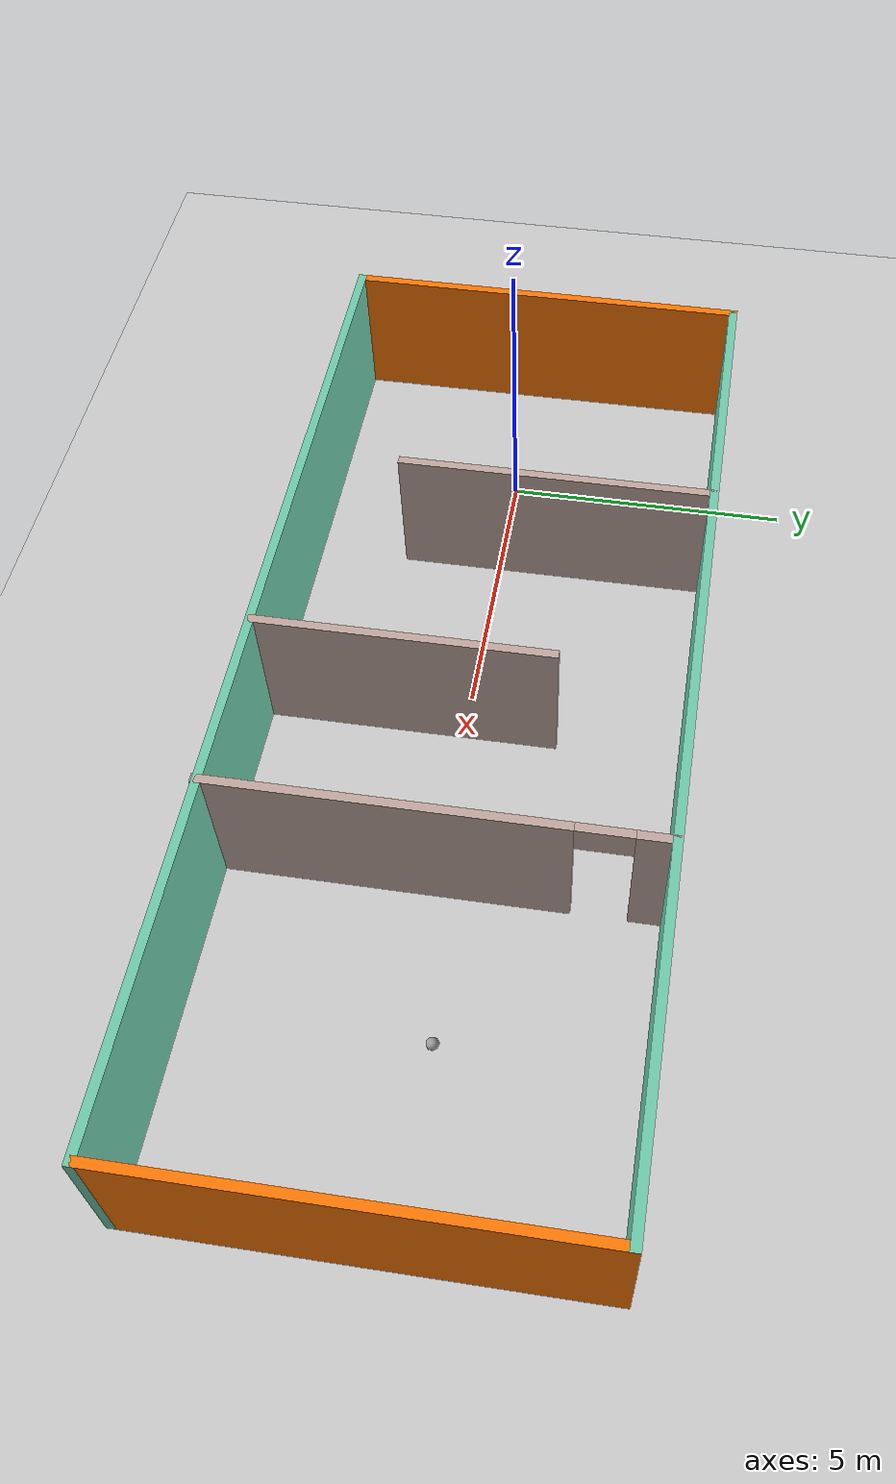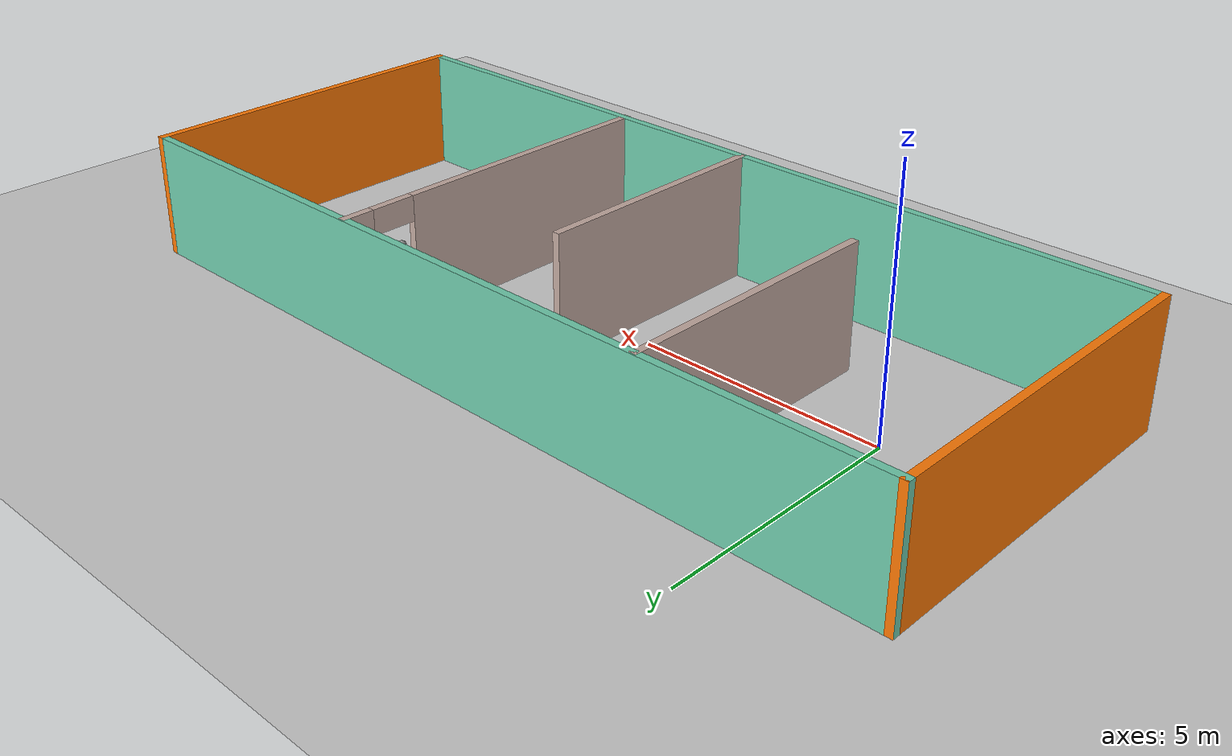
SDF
<sdf version="1.6">
 <world name="default">
  <light name="sun" type="directional">
   <pose>0 0 10 0 -0 0</pose>
   <diffuse>0.8 0.8 0.8 1</diffuse>
   <specular>0.2 0.2 0.2 1</specular>
   <attenuation>
    <range>1000</range>
    <constant>0.9</constant>
    <linear>0.01</linear>
    <quadratic>0.001</quadratic>
   </attenuation>
   <direction>-0.5 0.1 -0.9</direction>
  </light>
  <model name="ground_plane">
   <static>1</static>
   <link name="link">
    <collision name="collision">
     <geometry><plane><normal>0 0 1</normal><size>100 100</size></plane></geometry>
     <surface>
      <contact><collide_bitmask>65535</collide_bitmask></contact>
      <friction><ode><mu>100</mu><mu2>50</mu2></ode></friction>
     </surface>
    </collision>
    <visual name="visual">
     <cast_shadows>0</cast_shadows>
     <geometry><plane><normal>0 0 1</normal><size>100 100</size></plane></geometry>
     <material>
      <script><uri>file://media/materials/scripts/gazebo.material</uri><name>Gazebo/Grey</name></script>
     </material>
    </visual>
   </link>
  </model>
  <gravity>0 0 -9.8</gravity>
  <magnetic_field>6e-06 2.3e-05 -4.2e-05</magnetic_field>
  <atmosphere type="adiabatic"/>
  <physics name="default_physics" default="0" type="ode">
   <max_step_size>0.001</max_step_size>
   <real_time_factor>1</real_time_factor>
   <real_time_update_rate>1000</real_time_update_rate>
  </physics>
  <scene><ambient>0.4 0.4 0.4 1</ambient><background>0.7 0.7 0.7 1</background><shadows>1</shadows></scene>
  <spherical_coordinates>
   <surface_model>EARTH_WGS84</surface_model>
   <latitude_deg>0</latitude_deg>
   <longitude_deg>0</longitude_deg>
   <elevation>0</elevation>
   <heading_deg>0</heading_deg>
  </spherical_coordinates>
  <model name="simplest_world">
   <pose>5.9073 0.146302 0 0 -0 0</pose>
   <link name="Wall_10">
    <collision name="Wall_10_Collision">
     <geometry><box><size>7.25 0.15 2.5</size></box></geometry>
     <pose>0 0 1.25 0 -0 0</pose>
    </collision>
    <visual name="Wall_10_Visual">
     <pose>0 0 1.25 0 -0 0</pose>
     <geometry><box><size>7.25 0.15 2.5</size></box></geometry>
     <material>
      <script><uri>file://media/materials/scripts/gazebo.material</uri><name>Gazebo/Grey</name></script>
      <ambient>0.996078 0.47451 0.0196078 1</ambient>
     </material>
     <meta><layer>0</layer></meta>
    </visual>
    <pose>8.675 0.012311 0 0 0 -1.5708</pose>
   </link>
   <link name="Wall_11">
    <collision name="Wall_11_Collision">
     <geometry><box><size>17.5 0.15 2.5</size></box></geometry>
     <pose>0 0 1.25 0 -0 0</pose>
    </collision>
    <visual name="Wall_11_Visual">
     <pose>0 0 1.25 0 -0 0</pose>
     <geometry><box><size>17.5 0.15 2.5</size></box></geometry>
     <material>
      <script><uri>file://media/materials/scripts/gazebo.material</uri><name>Gazebo/Grey</name></script>
      <ambient>0.435294 0.796078 0.67451 1</ambient>
     </material>
     <meta><layer>0</layer></meta>
    </visual>
    <pose>0 -3.53769 0 0 -0 3.14159</pose>
   </link>
   <link name="Wall_13">
    <collision name="Wall_13_Collision">
     <geometry><box><size>5.5 0.15 2.5</size></box></geometry>
     <pose>0 0 1.25 0 -0 0</pose>
    </collision>
    <visual name="Wall_13_Visual">
     <pose>0 0 1.25 0 -0 0</pose>
     <geometry><box><size>5.5 0.15 2.5</size></box></geometry>
     <material>
      <script><uri>file://media/materials/scripts/gazebo.material</uri><name>Gazebo/Grey</name></script>
      <ambient>0.760784 0.662745 0.627451 1</ambient>
     </material>
     <meta><layer>0</layer></meta>
    </visual>
    <pose>-3.97198 0.862689 0 0 0 -1.5708</pose>
   </link>
   <link name="Wall_15">
    <collision name="Wall_15_Collision">
     <geometry><box><size>5 0.15 2.5</size></box></geometry>
     <pose>0 0 1.25 0 -0 0</pose>
    </collision>
    <visual name="Wall_15_Visual">
     <pose>0 0 1.25 0 -0 0</pose>
     <geometry><box><size>5 0.15 2.5</size></box></geometry>
     <material>
      <script><uri>file://media/materials/scripts/gazebo.material</uri><name>Gazebo/Grey</name></script>
      <ambient>0.760784 0.662745 0.627451 1</ambient>
     </material>
     <meta><layer>0</layer></meta>
    </visual>
    <pose>-0.157024 -1.07394 0 0 0 -1.5708</pose>
   </link>
   <link name="Wall_19">
    <pose>2.91356 -0.012311 0 0 0 -1.5708</pose>
    <visual name="Wall_19_Visual_0">
     <pose>-3.30074 0 1.25 0 -0 0</pose>
     <geometry><box><size>0.648526 0.15 2.5</size></box></geometry>
     <material>
      <script><uri>file://media/materials/scripts/gazebo.material</uri><name>Gazebo/Grey</name></script>
      <ambient>0.760784 0.662745 0.627451 1</ambient>
     </material>
     <meta><layer>0</layer></meta>
    </visual>
    <collision name="Wall_19_Collision_0">
     <geometry><box><size>0.648526 0.15 2.5</size></box></geometry>
     <pose>-3.30074 0 1.25 0 -0 0</pose>
    </collision>
    <visual name="Wall_19_Visual_1">
     <pose>0.774263 0 1.25 0 -0 0</pose>
     <geometry><box><size>5.70147 0.15 2.5</size></box></geometry>
     <material>
      <script><uri>file://media/materials/scripts/gazebo.material</uri><name>Gazebo/Grey</name></script>
      <ambient>0.760784 0.662745 0.627451 1</ambient>
     </material>
     <meta><layer>0</layer></meta>
    </visual>
    <collision name="Wall_19_Collision_1">
     <geometry><box><size>5.70147 0.15 2.5</size></box></geometry>
     <pose>0.774263 0 1.25 0 -0 0</pose>
    </collision>
    <visual name="Wall_19_Visual_2">
     <pose>-2.52647 0 2.25 0 -0 0</pose>
     <geometry><box><size>0.9 0.15 0.5</size></box></geometry>
     <material>
      <script><uri>file://media/materials/scripts/gazebo.material</uri><name>Gazebo/Grey</name></script>
      <ambient>0.760784 0.662745 0.627451 1</ambient>
     </material>
     <meta><layer>0</layer></meta>
    </visual>
    <collision name="Wall_19_Collision_2">
     <geometry><box><size>0.9 0.15 0.5</size></box></geometry>
     <pose>-2.52647 0 2.25 0 -0 0</pose>
    </collision>
   </link>
   <link name="Wall_4">
    <collision name="Wall_4_Collision">
     <geometry><box><size>7.25 0.15 2.5</size></box></geometry>
     <pose>0 0 1.25 0 -0 0</pose>
    </collision>
    <visual name="Wall_4_Visual">
     <pose>0 0 1.25 0 -0 0</pose>
     <geometry><box><size>7.25 0.15 2.5</size></box></geometry>
     <material>
      <script><uri>file://media/materials/scripts/gazebo.material</uri><name>Gazebo/Grey</name></script>
      <ambient>0.996078 0.47451 0.0196078 1</ambient>
     </material>
     <meta><layer>0</layer></meta>
    </visual>
    <pose>-8.675 0.012311 0 0 0 -1.5708</pose>
   </link>
   <link name="Wall_9">
    <collision name="Wall_9_Collision">
     <geometry><box><size>17.5 0.15 2.5</size></box></geometry>
     <pose>0 0 1.25 0 -0 0</pose>
    </collision>
    <visual name="Wall_9_Visual">
     <pose>0 0 1.25 0 -0 0</pose>
     <geometry><box><size>17.5 0.15 2.5</size></box></geometry>
     <material>
      <script><uri>file://media/materials/scripts/gazebo.material</uri><name>Gazebo/Grey</name></script>
      <ambient>0.435294 0.796078 0.67451 1</ambient>
     </material>
     <meta><layer>0</layer></meta>
    </visual>
    <pose>0 3.56231 0 0 -0 0</pose>
   </link>
   <static>1</static>
  </model>
  <model name="my_ball">
   <link name="link_0">
    <inertial>
     <mass>1</mass>
     <inertia><ixx>0.1</ixx><ixy>0</ixy><ixz>0</ixz><iyy>0.1</iyy><iyz>0</iyz><izz>0.1</izz></inertia>
    </inertial>
    <visual name="visual">
     <geometry><sphere><radius>0.1</radius></sphere></geometry>
     <material>
      <lighting>1</lighting>
      <script><uri>file://media/materials/scripts/gazebo.material</uri><name>Gazebo/Grey</name></script>
      <shader type="pixel"><normal_map>__default__</normal_map></shader>
      <ambient>1 1 1 1</ambient>
      <diffuse>1 1 1 1</diffuse>
      <specular>1 1 1 1</specular>
      <emissive>1 1 1 1</emissive>
     </material>
    </visual>
    <collision name="collision">
     <geometry><sphere><radius>0.1</radius></sphere></geometry>
     <surface>
      <friction>
       <ode><mu>1</mu><mu2>1</mu2><fdir1>0 0 0</fdir1><slip1>0</slip1><slip2>0</slip2></ode>
       <torsional>
        <coefficient>1</coefficient>
        <patch_radius>0</patch_radius>
        <surface_radius>0</surface_radius>
        <use_patch_radius>1</use_patch_radius>
        <ode><slip>0</slip></ode>
       </torsional>
      </friction>
      <bounce><restitution_coefficient>0</restitution_coefficient><threshold>1e+06</threshold></bounce>
      <contact>
       <collide_without_contact>0</collide_without_contact>
       <collide_without_contact_bitmask>1</collide_without_contact_bitmask>
       <collide_bitmask>1</collide_bitmask>
       <ode>
        <soft_cfm>0</soft_cfm>
        <soft_erp>0.2</soft_erp>
        <kp>1e+13</kp>
        <kd>1</kd>
        <max_vel>0.01</max_vel>
        <min_depth>0</min_depth>
       </ode>
       <bullet>
        <split_impulse>1</split_impulse>
        <split_impulse_penetration_threshold>-0.01</split_impulse_penetration_threshold>
        <soft_cfm>0</soft_cfm>
        <soft_erp>0.2</soft_erp>
        <kp>1e+13</kp>
        <kd>1</kd>
       </bullet>
      </contact>
     </surface>
    </collision>
   </link>
   <static>0</static>
   <pose>11.3834 0.495785 0.1 0 -0 0</pose>
  </model>
  <plugin filename="libcollision_map_creator.so" name="collision_map_creator"/>
 </world>
</sdf>
